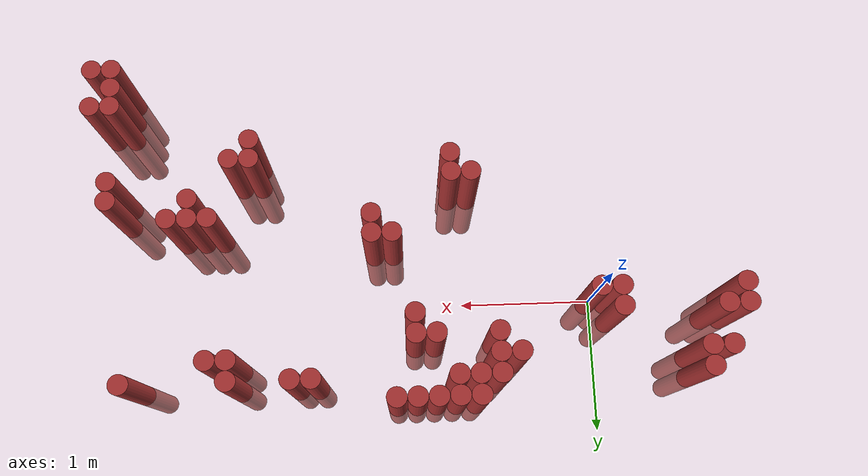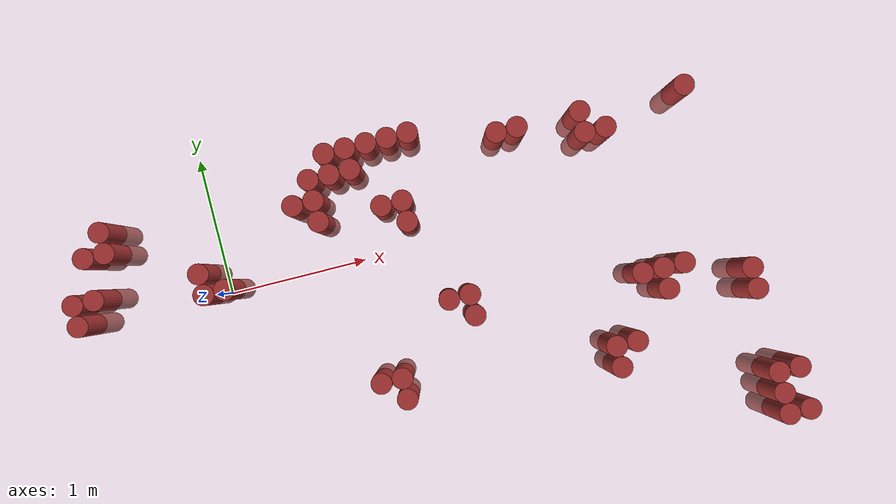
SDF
<sdf version="1.6">
 <world name="default">
  <model name="ground_plane">
   <static>1</static>
   <link name="link">
    <collision name="collision">
     <geometry><plane><normal>0 0 1</normal><size>100 100</size></plane></geometry>
     <surface><friction><ode><mu>100</mu><mu2>50</mu2></ode></friction></surface>
    </collision>
    <visual name="visual">
     <cast_shadows>0</cast_shadows>
     <geometry><plane><normal>0 0 1</normal><size>100 100</size></plane></geometry>
     <material>
      <script><uri>file://media/materials/scripts/gazebo.material</uri><name>Gazebo/Grey</name></script>
     </material>
    </visual>
   </link>
  </model>
  <model name="unit_cylinder_330">
   <static>1</static>
   <pose>-1.025000 0.025000 0.000000 0.000000 0.000000 0.000000</pose>
   <link name="link">
    <inertial>
     <mass>1</mass>
     <inertia><ixx>0.145833</ixx><ixy>0</ixy><ixz>0</ixz><iyy>0.145833</iyy><iyz>0</iyz><izz>0.125</izz></inertia>
    </inertial>
    <collision name="collision">
     <geometry><cylinder><radius>0.075000</radius><length>1.5</length></cylinder></geometry>
    </collision>
    <visual name="visual">
     <geometry><cylinder><radius>0.075000</radius><length>1.5</length></cylinder></geometry>
     <material>
      <ambient>0.648000 0.192000 0.192000 1</ambient>
      <diffuse>0.648000 0.192000 0.192000 1</diffuse>
     </material>
     <material>
      <script><name>Gazebo/Grey</name><uri>file://media/materials/scripts/gazebo.material</uri></script>
     </material>
    </visual>
   </link>
  </model>
  <model name="unit_cylinder_331">
   <static>1</static>
   <pose>-1.025000 0.175000 0.000000 0.000000 0.000000 0.000000</pose>
   <link name="link">
    <inertial>
     <mass>1</mass>
     <inertia><ixx>0.145833</ixx><ixy>0</ixy><ixz>0</ixz><iyy>0.145833</iyy><iyz>0</iyz><izz>0.125</izz></inertia>
    </inertial>
    <collision name="collision">
     <geometry><cylinder><radius>0.075000</radius><length>1.5</length></cylinder></geometry>
    </collision>
    <visual name="visual">
     <geometry><cylinder><radius>0.075000</radius><length>1.5</length></cylinder></geometry>
     <material>
      <ambient>0.648000 0.192000 0.192000 1</ambient>
      <diffuse>0.648000 0.192000 0.192000 1</diffuse>
     </material>
     <material>
      <script><name>Gazebo/Grey</name><uri>file://media/materials/scripts/gazebo.material</uri></script>
     </material>
    </visual>
   </link>
  </model>
  <model name="unit_cylinder_332">
   <static>1</static>
   <pose>-0.875000 0.175000 0.000000 0.000000 0.000000 0.000000</pose>
   <link name="link">
    <inertial>
     <mass>1</mass>
     <inertia><ixx>0.145833</ixx><ixy>0</ixy><ixz>0</ixz><iyy>0.145833</iyy><iyz>0</iyz><izz>0.125</izz></inertia>
    </inertial>
    <collision name="collision">
     <geometry><cylinder><radius>0.075000</radius><length>1.5</length></cylinder></geometry>
    </collision>
    <visual name="visual">
     <geometry><cylinder><radius>0.075000</radius><length>1.5</length></cylinder></geometry>
     <material>
      <ambient>0.648000 0.192000 0.192000 1</ambient>
      <diffuse>0.648000 0.192000 0.192000 1</diffuse>
     </material>
     <material>
      <script><name>Gazebo/Grey</name><uri>file://media/materials/scripts/gazebo.material</uri></script>
     </material>
    </visual>
   </link>
  </model>
  <model name="unit_cylinder_333">
   <static>1</static>
   <pose>-0.875000 0.475000 0.000000 0.000000 0.000000 0.000000</pose>
   <link name="link">
    <inertial>
     <mass>1</mass>
     <inertia><ixx>0.145833</ixx><ixy>0</ixy><ixz>0</ixz><iyy>0.145833</iyy><iyz>0</iyz><izz>0.125</izz></inertia>
    </inertial>
    <collision name="collision">
     <geometry><cylinder><radius>0.075000</radius><length>1.5</length></cylinder></geometry>
    </collision>
    <visual name="visual">
     <geometry><cylinder><radius>0.075000</radius><length>1.5</length></cylinder></geometry>
     <material>
      <ambient>0.648000 0.192000 0.192000 1</ambient>
      <diffuse>0.648000 0.192000 0.192000 1</diffuse>
     </material>
     <material>
      <script><name>Gazebo/Grey</name><uri>file://media/materials/scripts/gazebo.material</uri></script>
     </material>
    </visual>
   </link>
  </model>
  <model name="unit_cylinder_334">
   <static>1</static>
   <pose>-0.725000 0.475000 0.000000 0.000000 0.000000 0.000000</pose>
   <link name="link">
    <inertial>
     <mass>1</mass>
     <inertia><ixx>0.145833</ixx><ixy>0</ixy><ixz>0</ixz><iyy>0.145833</iyy><iyz>0</iyz><izz>0.125</izz></inertia>
    </inertial>
    <collision name="collision">
     <geometry><cylinder><radius>0.075000</radius><length>1.5</length></cylinder></geometry>
    </collision>
    <visual name="visual">
     <geometry><cylinder><radius>0.075000</radius><length>1.5</length></cylinder></geometry>
     <material>
      <ambient>0.648000 0.192000 0.192000 1</ambient>
      <diffuse>0.648000 0.192000 0.192000 1</diffuse>
     </material>
     <material>
      <script><name>Gazebo/Grey</name><uri>file://media/materials/scripts/gazebo.material</uri></script>
     </material>
    </visual>
   </link>
  </model>
  <model name="unit_cylinder_335">
   <static>1</static>
   <pose>-0.725000 0.625000 0.000000 0.000000 0.000000 0.000000</pose>
   <link name="link">
    <inertial>
     <mass>1</mass>
     <inertia><ixx>0.145833</ixx><ixy>0</ixy><ixz>0</ixz><iyy>0.145833</iyy><iyz>0</iyz><izz>0.125</izz></inertia>
    </inertial>
    <collision name="collision">
     <geometry><cylinder><radius>0.075000</radius><length>1.5</length></cylinder></geometry>
    </collision>
    <visual name="visual">
     <geometry><cylinder><radius>0.075000</radius><length>1.5</length></cylinder></geometry>
     <material>
      <ambient>0.648000 0.192000 0.192000 1</ambient>
      <diffuse>0.648000 0.192000 0.192000 1</diffuse>
     </material>
     <material>
      <script><name>Gazebo/Grey</name><uri>file://media/materials/scripts/gazebo.material</uri></script>
     </material>
    </visual>
   </link>
  </model>
  <model name="unit_cylinder_339">
   <static>1</static>
   <pose>-0.125000 0.025000 0.000000 0.000000 0.000000 0.000000</pose>
   <link name="link">
    <inertial>
     <mass>1</mass>
     <inertia><ixx>0.145833</ixx><ixy>0</ixy><ixz>0</ixz><iyy>0.145833</iyy><iyz>0</iyz><izz>0.125</izz></inertia>
    </inertial>
    <collision name="collision">
     <geometry><cylinder><radius>0.075000</radius><length>1.5</length></cylinder></geometry>
    </collision>
    <visual name="visual">
     <geometry><cylinder><radius>0.075000</radius><length>1.5</length></cylinder></geometry>
     <material>
      <ambient>0.648000 0.192000 0.192000 1</ambient>
      <diffuse>0.648000 0.192000 0.192000 1</diffuse>
     </material>
     <material>
      <script><name>Gazebo/Grey</name><uri>file://media/materials/scripts/gazebo.material</uri></script>
     </material>
    </visual>
   </link>
  </model>
  <model name="unit_cylinder_340">
   <static>1</static>
   <pose>-0.125000 0.175000 0.000000 0.000000 0.000000 0.000000</pose>
   <link name="link">
    <inertial>
     <mass>1</mass>
     <inertia><ixx>0.145833</ixx><ixy>0</ixy><ixz>0</ixz><iyy>0.145833</iyy><iyz>0</iyz><izz>0.125</izz></inertia>
    </inertial>
    <collision name="collision">
     <geometry><cylinder><radius>0.075000</radius><length>1.5</length></cylinder></geometry>
    </collision>
    <visual name="visual">
     <geometry><cylinder><radius>0.075000</radius><length>1.5</length></cylinder></geometry>
     <material>
      <ambient>0.648000 0.192000 0.192000 1</ambient>
      <diffuse>0.648000 0.192000 0.192000 1</diffuse>
     </material>
     <material>
      <script><name>Gazebo/Grey</name><uri>file://media/materials/scripts/gazebo.material</uri></script>
     </material>
    </visual>
   </link>
  </model>
  <model name="unit_cylinder_341">
   <static>1</static>
   <pose>0.025000 0.025000 0.000000 0.000000 0.000000 0.000000</pose>
   <link name="link">
    <inertial>
     <mass>1</mass>
     <inertia><ixx>0.145833</ixx><ixy>0</ixy><ixz>0</ixz><iyy>0.145833</iyy><iyz>0</iyz><izz>0.125</izz></inertia>
    </inertial>
    <collision name="collision">
     <geometry><cylinder><radius>0.075000</radius><length>1.5</length></cylinder></geometry>
    </collision>
    <visual name="visual">
     <geometry><cylinder><radius>0.075000</radius><length>1.5</length></cylinder></geometry>
     <material>
      <ambient>0.648000 0.192000 0.192000 1</ambient>
      <diffuse>0.648000 0.192000 0.192000 1</diffuse>
     </material>
     <material>
      <script><name>Gazebo/Grey</name><uri>file://media/materials/scripts/gazebo.material</uri></script>
     </material>
    </visual>
   </link>
  </model>
  <model name="unit_cylinder_355">
   <static>1</static>
   <pose>0.625000 0.475000 0.000000 0.000000 0.000000 0.000000</pose>
   <link name="link">
    <inertial>
     <mass>1</mass>
     <inertia><ixx>0.145833</ixx><ixy>0</ixy><ixz>0</ixz><iyy>0.145833</iyy><iyz>0</iyz><izz>0.125</izz></inertia>
    </inertial>
    <collision name="collision">
     <geometry><cylinder><radius>0.075000</radius><length>1.5</length></cylinder></geometry>
    </collision>
    <visual name="visual">
     <geometry><cylinder><radius>0.075000</radius><length>1.5</length></cylinder></geometry>
     <material>
      <ambient>0.648000 0.192000 0.192000 1</ambient>
      <diffuse>0.648000 0.192000 0.192000 1</diffuse>
     </material>
     <material>
      <script><name>Gazebo/Grey</name><uri>file://media/materials/scripts/gazebo.material</uri></script>
     </material>
    </visual>
   </link>
  </model>
  <model name="unit_cylinder_356">
   <static>1</static>
   <pose>0.775000 0.325000 0.000000 0.000000 0.000000 0.000000</pose>
   <link name="link">
    <inertial>
     <mass>1</mass>
     <inertia><ixx>0.145833</ixx><ixy>0</ixy><ixz>0</ixz><iyy>0.145833</iyy><iyz>0</iyz><izz>0.125</izz></inertia>
    </inertial>
    <collision name="collision">
     <geometry><cylinder><radius>0.075000</radius><length>1.5</length></cylinder></geometry>
    </collision>
    <visual name="visual">
     <geometry><cylinder><radius>0.075000</radius><length>1.5</length></cylinder></geometry>
     <material>
      <ambient>0.648000 0.192000 0.192000 1</ambient>
      <diffuse>0.648000 0.192000 0.192000 1</diffuse>
     </material>
     <material>
      <script><name>Gazebo/Grey</name><uri>file://media/materials/scripts/gazebo.material</uri></script>
     </material>
    </visual>
   </link>
  </model>
  <model name="unit_cylinder_357">
   <static>1</static>
   <pose>0.775000 0.475000 0.000000 0.000000 0.000000 0.000000</pose>
   <link name="link">
    <inertial>
     <mass>1</mass>
     <inertia><ixx>0.145833</ixx><ixy>0</ixy><ixz>0</ixz><iyy>0.145833</iyy><iyz>0</iyz><izz>0.125</izz></inertia>
    </inertial>
    <collision name="collision">
     <geometry><cylinder><radius>0.075000</radius><length>1.5</length></cylinder></geometry>
    </collision>
    <visual name="visual">
     <geometry><cylinder><radius>0.075000</radius><length>1.5</length></cylinder></geometry>
     <material>
      <ambient>0.648000 0.192000 0.192000 1</ambient>
      <diffuse>0.648000 0.192000 0.192000 1</diffuse>
     </material>
     <material>
      <script><name>Gazebo/Grey</name><uri>file://media/materials/scripts/gazebo.material</uri></script>
     </material>
    </visual>
   </link>
  </model>
  <model name="unit_cylinder_358">
   <static>1</static>
   <pose>0.775000 0.625000 0.000000 0.000000 0.000000 0.000000</pose>
   <link name="link">
    <inertial>
     <mass>1</mass>
     <inertia><ixx>0.145833</ixx><ixy>0</ixy><ixz>0</ixz><iyy>0.145833</iyy><iyz>0</iyz><izz>0.125</izz></inertia>
    </inertial>
    <collision name="collision">
     <geometry><cylinder><radius>0.075000</radius><length>1.5</length></cylinder></geometry>
    </collision>
    <visual name="visual">
     <geometry><cylinder><radius>0.075000</radius><length>1.5</length></cylinder></geometry>
     <material>
      <ambient>0.648000 0.192000 0.192000 1</ambient>
      <diffuse>0.648000 0.192000 0.192000 1</diffuse>
     </material>
     <material>
      <script><name>Gazebo/Grey</name><uri>file://media/materials/scripts/gazebo.material</uri></script>
     </material>
    </visual>
   </link>
  </model>
  <model name="unit_cylinder_360">
   <static>1</static>
   <pose>0.925000 -0.875000 0.000000 0.000000 0.000000 0.000000</pose>
   <link name="link">
    <inertial>
     <mass>1</mass>
     <inertia><ixx>0.145833</ixx><ixy>0</ixy><ixz>0</ixz><iyy>0.145833</iyy><iyz>0</iyz><izz>0.125</izz></inertia>
    </inertial>
    <collision name="collision">
     <geometry><cylinder><radius>0.075000</radius><length>1.5</length></cylinder></geometry>
    </collision>
    <visual name="visual">
     <geometry><cylinder><radius>0.075000</radius><length>1.5</length></cylinder></geometry>
     <material>
      <ambient>0.648000 0.192000 0.192000 1</ambient>
      <diffuse>0.648000 0.192000 0.192000 1</diffuse>
     </material>
     <material>
      <script><name>Gazebo/Grey</name><uri>file://media/materials/scripts/gazebo.material</uri></script>
     </material>
    </visual>
   </link>
  </model>
  <model name="unit_cylinder_361">
   <static>1</static>
   <pose>0.925000 0.625000 0.000000 0.000000 0.000000 0.000000</pose>
   <link name="link">
    <inertial>
     <mass>1</mass>
     <inertia><ixx>0.145833</ixx><ixy>0</ixy><ixz>0</ixz><iyy>0.145833</iyy><iyz>0</iyz><izz>0.125</izz></inertia>
    </inertial>
    <collision name="collision">
     <geometry><cylinder><radius>0.075000</radius><length>1.5</length></cylinder></geometry>
    </collision>
    <visual name="visual">
     <geometry><cylinder><radius>0.075000</radius><length>1.5</length></cylinder></geometry>
     <material>
      <ambient>0.648000 0.192000 0.192000 1</ambient>
      <diffuse>0.648000 0.192000 0.192000 1</diffuse>
     </material>
     <material>
      <script><name>Gazebo/Grey</name><uri>file://media/materials/scripts/gazebo.material</uri></script>
     </material>
    </visual>
   </link>
  </model>
  <model name="unit_cylinder_362">
   <static>1</static>
   <pose>0.925000 0.775000 0.000000 0.000000 0.000000 0.000000</pose>
   <link name="link">
    <inertial>
     <mass>1</mass>
     <inertia><ixx>0.145833</ixx><ixy>0</ixy><ixz>0</ixz><iyy>0.145833</iyy><iyz>0</iyz><izz>0.125</izz></inertia>
    </inertial>
    <collision name="collision">
     <geometry><cylinder><radius>0.075000</radius><length>1.5</length></cylinder></geometry>
    </collision>
    <visual name="visual">
     <geometry><cylinder><radius>0.075000</radius><length>1.5</length></cylinder></geometry>
     <material>
      <ambient>0.648000 0.192000 0.192000 1</ambient>
      <diffuse>0.648000 0.192000 0.192000 1</diffuse>
     </material>
     <material>
      <script><name>Gazebo/Grey</name><uri>file://media/materials/scripts/gazebo.material</uri></script>
     </material>
    </visual>
   </link>
  </model>
  <model name="unit_cylinder_368">
   <static>1</static>
   <pose>1.075000 -1.025000 0.000000 0.000000 0.000000 0.000000</pose>
   <link name="link">
    <inertial>
     <mass>1</mass>
     <inertia><ixx>0.145833</ixx><ixy>0</ixy><ixz>0</ixz><iyy>0.145833</iyy><iyz>0</iyz><izz>0.125</izz></inertia>
    </inertial>
    <collision name="collision">
     <geometry><cylinder><radius>0.075000</radius><length>1.5</length></cylinder></geometry>
    </collision>
    <visual name="visual">
     <geometry><cylinder><radius>0.075000</radius><length>1.5</length></cylinder></geometry>
     <material>
      <ambient>0.648000 0.192000 0.192000 1</ambient>
      <diffuse>0.648000 0.192000 0.192000 1</diffuse>
     </material>
     <material>
      <script><name>Gazebo/Grey</name><uri>file://media/materials/scripts/gazebo.material</uri></script>
     </material>
    </visual>
   </link>
  </model>
  <model name="unit_cylinder_369">
   <static>1</static>
   <pose>1.075000 -0.875000 0.000000 0.000000 0.000000 0.000000</pose>
   <link name="link">
    <inertial>
     <mass>1</mass>
     <inertia><ixx>0.145833</ixx><ixy>0</ixy><ixz>0</ixz><iyy>0.145833</iyy><iyz>0</iyz><izz>0.125</izz></inertia>
    </inertial>
    <collision name="collision">
     <geometry><cylinder><radius>0.075000</radius><length>1.5</length></cylinder></geometry>
    </collision>
    <visual name="visual">
     <geometry><cylinder><radius>0.075000</radius><length>1.5</length></cylinder></geometry>
     <material>
      <ambient>0.648000 0.192000 0.192000 1</ambient>
      <diffuse>0.648000 0.192000 0.192000 1</diffuse>
     </material>
     <material>
      <script><name>Gazebo/Grey</name><uri>file://media/materials/scripts/gazebo.material</uri></script>
     </material>
    </visual>
   </link>
  </model>
  <model name="unit_cylinder_370">
   <static>1</static>
   <pose>1.075000 0.625000 0.000000 0.000000 0.000000 0.000000</pose>
   <link name="link">
    <inertial>
     <mass>1</mass>
     <inertia><ixx>0.145833</ixx><ixy>0</ixy><ixz>0</ixz><iyy>0.145833</iyy><iyz>0</iyz><izz>0.125</izz></inertia>
    </inertial>
    <collision name="collision">
     <geometry><cylinder><radius>0.075000</radius><length>1.5</length></cylinder></geometry>
    </collision>
    <visual name="visual">
     <geometry><cylinder><radius>0.075000</radius><length>1.5</length></cylinder></geometry>
     <material>
      <ambient>0.648000 0.192000 0.192000 1</ambient>
      <diffuse>0.648000 0.192000 0.192000 1</diffuse>
     </material>
     <material>
      <script><name>Gazebo/Grey</name><uri>file://media/materials/scripts/gazebo.material</uri></script>
     </material>
    </visual>
   </link>
  </model>
  <model name="unit_cylinder_371">
   <static>1</static>
   <pose>1.075000 0.775000 0.000000 0.000000 0.000000 0.000000</pose>
   <link name="link">
    <inertial>
     <mass>1</mass>
     <inertia><ixx>0.145833</ixx><ixy>0</ixy><ixz>0</ixz><iyy>0.145833</iyy><iyz>0</iyz><izz>0.125</izz></inertia>
    </inertial>
    <collision name="collision">
     <geometry><cylinder><radius>0.075000</radius><length>1.5</length></cylinder></geometry>
    </collision>
    <visual name="visual">
     <geometry><cylinder><radius>0.075000</radius><length>1.5</length></cylinder></geometry>
     <material>
      <ambient>0.648000 0.192000 0.192000 1</ambient>
      <diffuse>0.648000 0.192000 0.192000 1</diffuse>
     </material>
     <material>
      <script><name>Gazebo/Grey</name><uri>file://media/materials/scripts/gazebo.material</uri></script>
     </material>
    </visual>
   </link>
  </model>
  <model name="unit_cylinder_383">
   <static>1</static>
   <pose>1.225000 0.325000 0.000000 0.000000 0.000000 0.000000</pose>
   <link name="link">
    <inertial>
     <mass>1</mass>
     <inertia><ixx>0.145833</ixx><ixy>0</ixy><ixz>0</ixz><iyy>0.145833</iyy><iyz>0</iyz><izz>0.125</izz></inertia>
    </inertial>
    <collision name="collision">
     <geometry><cylinder><radius>0.075000</radius><length>1.5</length></cylinder></geometry>
    </collision>
    <visual name="visual">
     <geometry><cylinder><radius>0.075000</radius><length>1.5</length></cylinder></geometry>
     <material>
      <ambient>0.648000 0.192000 0.192000 1</ambient>
      <diffuse>0.648000 0.192000 0.192000 1</diffuse>
     </material>
     <material>
      <script><name>Gazebo/Grey</name><uri>file://media/materials/scripts/gazebo.material</uri></script>
     </material>
    </visual>
   </link>
  </model>
  <model name="unit_cylinder_384">
   <static>1</static>
   <pose>1.225000 0.775000 0.000000 0.000000 0.000000 0.000000</pose>
   <link name="link">
    <inertial>
     <mass>1</mass>
     <inertia><ixx>0.145833</ixx><ixy>0</ixy><ixz>0</ixz><iyy>0.145833</iyy><iyz>0</iyz><izz>0.125</izz></inertia>
    </inertial>
    <collision name="collision">
     <geometry><cylinder><radius>0.075000</radius><length>1.5</length></cylinder></geometry>
    </collision>
    <visual name="visual">
     <geometry><cylinder><radius>0.075000</radius><length>1.5</length></cylinder></geometry>
     <material>
      <ambient>0.648000 0.192000 0.192000 1</ambient>
      <diffuse>0.648000 0.192000 0.192000 1</diffuse>
     </material>
     <material>
      <script><name>Gazebo/Grey</name><uri>file://media/materials/scripts/gazebo.material</uri></script>
     </material>
    </visual>
   </link>
  </model>
  <model name="unit_cylinder_391">
   <static>1</static>
   <pose>1.375000 0.175000 0.000000 0.000000 0.000000 0.000000</pose>
   <link name="link">
    <inertial>
     <mass>1</mass>
     <inertia><ixx>0.145833</ixx><ixy>0</ixy><ixz>0</ixz><iyy>0.145833</iyy><iyz>0</iyz><izz>0.125</izz></inertia>
    </inertial>
    <collision name="collision">
     <geometry><cylinder><radius>0.075000</radius><length>1.5</length></cylinder></geometry>
    </collision>
    <visual name="visual">
     <geometry><cylinder><radius>0.075000</radius><length>1.5</length></cylinder></geometry>
     <material>
      <ambient>0.648000 0.192000 0.192000 1</ambient>
      <diffuse>0.648000 0.192000 0.192000 1</diffuse>
     </material>
     <material>
      <script><name>Gazebo/Grey</name><uri>file://media/materials/scripts/gazebo.material</uri></script>
     </material>
    </visual>
   </link>
  </model>
  <model name="unit_cylinder_392">
   <static>1</static>
   <pose>1.375000 0.325000 0.000000 0.000000 0.000000 0.000000</pose>
   <link name="link">
    <inertial>
     <mass>1</mass>
     <inertia><ixx>0.145833</ixx><ixy>0</ixy><ixz>0</ixz><iyy>0.145833</iyy><iyz>0</iyz><izz>0.125</izz></inertia>
    </inertial>
    <collision name="collision">
     <geometry><cylinder><radius>0.075000</radius><length>1.5</length></cylinder></geometry>
    </collision>
    <visual name="visual">
     <geometry><cylinder><radius>0.075000</radius><length>1.5</length></cylinder></geometry>
     <material>
      <ambient>0.648000 0.192000 0.192000 1</ambient>
      <diffuse>0.648000 0.192000 0.192000 1</diffuse>
     </material>
     <material>
      <script><name>Gazebo/Grey</name><uri>file://media/materials/scripts/gazebo.material</uri></script>
     </material>
    </visual>
   </link>
  </model>
  <model name="unit_cylinder_393">
   <static>1</static>
   <pose>1.375000 0.775000 0.000000 0.000000 0.000000 0.000000</pose>
   <link name="link">
    <inertial>
     <mass>1</mass>
     <inertia><ixx>0.145833</ixx><ixy>0</ixy><ixz>0</ixz><iyy>0.145833</iyy><iyz>0</iyz><izz>0.125</izz></inertia>
    </inertial>
    <collision name="collision">
     <geometry><cylinder><radius>0.075000</radius><length>1.5</length></cylinder></geometry>
    </collision>
    <visual name="visual">
     <geometry><cylinder><radius>0.075000</radius><length>1.5</length></cylinder></geometry>
     <material>
      <ambient>0.648000 0.192000 0.192000 1</ambient>
      <diffuse>0.648000 0.192000 0.192000 1</diffuse>
     </material>
     <material>
      <script><name>Gazebo/Grey</name><uri>file://media/materials/scripts/gazebo.material</uri></script>
     </material>
    </visual>
   </link>
  </model>
  <model name="unit_cylinder_398">
   <static>1</static>
   <pose>1.525000 -0.425000 0.000000 0.000000 0.000000 0.000000</pose>
   <link name="link">
    <inertial>
     <mass>1</mass>
     <inertia><ixx>0.145833</ixx><ixy>0</ixy><ixz>0</ixz><iyy>0.145833</iyy><iyz>0</iyz><izz>0.125</izz></inertia>
    </inertial>
    <collision name="collision">
     <geometry><cylinder><radius>0.075000</radius><length>1.5</length></cylinder></geometry>
    </collision>
    <visual name="visual">
     <geometry><cylinder><radius>0.075000</radius><length>1.5</length></cylinder></geometry>
     <material>
      <ambient>0.648000 0.192000 0.192000 1</ambient>
      <diffuse>0.648000 0.192000 0.192000 1</diffuse>
     </material>
     <material>
      <script><name>Gazebo/Grey</name><uri>file://media/materials/scripts/gazebo.material</uri></script>
     </material>
    </visual>
   </link>
  </model>
  <model name="unit_cylinder_399">
   <static>1</static>
   <pose>1.525000 0.775000 0.000000 0.000000 0.000000 0.000000</pose>
   <link name="link">
    <inertial>
     <mass>1</mass>
     <inertia><ixx>0.145833</ixx><ixy>0</ixy><ixz>0</ixz><iyy>0.145833</iyy><iyz>0</iyz><izz>0.125</izz></inertia>
    </inertial>
    <collision name="collision">
     <geometry><cylinder><radius>0.075000</radius><length>1.5</length></cylinder></geometry>
    </collision>
    <visual name="visual">
     <geometry><cylinder><radius>0.075000</radius><length>1.5</length></cylinder></geometry>
     <material>
      <ambient>0.648000 0.192000 0.192000 1</ambient>
      <diffuse>0.648000 0.192000 0.192000 1</diffuse>
     </material>
     <material>
      <script><name>Gazebo/Grey</name><uri>file://media/materials/scripts/gazebo.material</uri></script>
     </material>
    </visual>
   </link>
  </model>
  <model name="unit_cylinder_404">
   <static>1</static>
   <pose>1.675000 -0.575000 0.000000 0.000000 0.000000 0.000000</pose>
   <link name="link">
    <inertial>
     <mass>1</mass>
     <inertia><ixx>0.145833</ixx><ixy>0</ixy><ixz>0</ixz><iyy>0.145833</iyy><iyz>0</iyz><izz>0.125</izz></inertia>
    </inertial>
    <collision name="collision">
     <geometry><cylinder><radius>0.075000</radius><length>1.5</length></cylinder></geometry>
    </collision>
    <visual name="visual">
     <geometry><cylinder><radius>0.075000</radius><length>1.5</length></cylinder></geometry>
     <material>
      <ambient>0.648000 0.192000 0.192000 1</ambient>
      <diffuse>0.648000 0.192000 0.192000 1</diffuse>
     </material>
     <material>
      <script><name>Gazebo/Grey</name><uri>file://media/materials/scripts/gazebo.material</uri></script>
     </material>
    </visual>
   </link>
  </model>
  <model name="unit_cylinder_405">
   <static>1</static>
   <pose>1.675000 -0.425000 0.000000 0.000000 0.000000 0.000000</pose>
   <link name="link">
    <inertial>
     <mass>1</mass>
     <inertia><ixx>0.145833</ixx><ixy>0</ixy><ixz>0</ixz><iyy>0.145833</iyy><iyz>0</iyz><izz>0.125</izz></inertia>
    </inertial>
    <collision name="collision">
     <geometry><cylinder><radius>0.075000</radius><length>1.5</length></cylinder></geometry>
    </collision>
    <visual name="visual">
     <geometry><cylinder><radius>0.075000</radius><length>1.5</length></cylinder></geometry>
     <material>
      <ambient>0.648000 0.192000 0.192000 1</ambient>
      <diffuse>0.648000 0.192000 0.192000 1</diffuse>
     </material>
     <material>
      <script><name>Gazebo/Grey</name><uri>file://media/materials/scripts/gazebo.material</uri></script>
     </material>
    </visual>
   </link>
  </model>
  <model name="unit_cylinder_416">
   <static>1</static>
   <pose>2.125000 0.625000 0.000000 0.000000 0.000000 0.000000</pose>
   <link name="link">
    <inertial>
     <mass>1</mass>
     <inertia><ixx>0.145833</ixx><ixy>0</ixy><ixz>0</ixz><iyy>0.145833</iyy><iyz>0</iyz><izz>0.125</izz></inertia>
    </inertial>
    <collision name="collision">
     <geometry><cylinder><radius>0.075000</radius><length>1.5</length></cylinder></geometry>
    </collision>
    <visual name="visual">
     <geometry><cylinder><radius>0.075000</radius><length>1.5</length></cylinder></geometry>
     <material>
      <ambient>0.648000 0.192000 0.192000 1</ambient>
      <diffuse>0.648000 0.192000 0.192000 1</diffuse>
     </material>
     <material>
      <script><name>Gazebo/Grey</name><uri>file://media/materials/scripts/gazebo.material</uri></script>
     </material>
    </visual>
   </link>
  </model>
  <model name="unit_cylinder_421">
   <static>1</static>
   <pose>2.275000 0.625000 0.000000 0.000000 0.000000 0.000000</pose>
   <link name="link">
    <inertial>
     <mass>1</mass>
     <inertia><ixx>0.145833</ixx><ixy>0</ixy><ixz>0</ixz><iyy>0.145833</iyy><iyz>0</iyz><izz>0.125</izz></inertia>
    </inertial>
    <collision name="collision">
     <geometry><cylinder><radius>0.075000</radius><length>1.5</length></cylinder></geometry>
    </collision>
    <visual name="visual">
     <geometry><cylinder><radius>0.075000</radius><length>1.5</length></cylinder></geometry>
     <material>
      <ambient>0.648000 0.192000 0.192000 1</ambient>
      <diffuse>0.648000 0.192000 0.192000 1</diffuse>
     </material>
     <material>
      <script><name>Gazebo/Grey</name><uri>file://media/materials/scripts/gazebo.material</uri></script>
     </material>
    </visual>
   </link>
  </model>
  <model name="unit_cylinder_429">
   <static>1</static>
   <pose>2.575000 -1.175000 0.000000 0.000000 0.000000 0.000000</pose>
   <link name="link">
    <inertial>
     <mass>1</mass>
     <inertia><ixx>0.145833</ixx><ixy>0</ixy><ixz>0</ixz><iyy>0.145833</iyy><iyz>0</iyz><izz>0.125</izz></inertia>
    </inertial>
    <collision name="collision">
     <geometry><cylinder><radius>0.075000</radius><length>1.5</length></cylinder></geometry>
    </collision>
    <visual name="visual">
     <geometry><cylinder><radius>0.075000</radius><length>1.5</length></cylinder></geometry>
     <material>
      <ambient>0.648000 0.192000 0.192000 1</ambient>
      <diffuse>0.648000 0.192000 0.192000 1</diffuse>
     </material>
     <material>
      <script><name>Gazebo/Grey</name><uri>file://media/materials/scripts/gazebo.material</uri></script>
     </material>
    </visual>
   </link>
  </model>
  <model name="unit_cylinder_430">
   <static>1</static>
   <pose>2.575000 -1.025000 0.000000 0.000000 0.000000 0.000000</pose>
   <link name="link">
    <inertial>
     <mass>1</mass>
     <inertia><ixx>0.145833</ixx><ixy>0</ixy><ixz>0</ixz><iyy>0.145833</iyy><iyz>0</iyz><izz>0.125</izz></inertia>
    </inertial>
    <collision name="collision">
     <geometry><cylinder><radius>0.075000</radius><length>1.5</length></cylinder></geometry>
    </collision>
    <visual name="visual">
     <geometry><cylinder><radius>0.075000</radius><length>1.5</length></cylinder></geometry>
     <material>
      <ambient>0.648000 0.192000 0.192000 1</ambient>
      <diffuse>0.648000 0.192000 0.192000 1</diffuse>
     </material>
     <material>
      <script><name>Gazebo/Grey</name><uri>file://media/materials/scripts/gazebo.material</uri></script>
     </material>
    </visual>
   </link>
  </model>
  <model name="unit_cylinder_434">
   <static>1</static>
   <pose>2.725000 -1.025000 0.000000 0.000000 0.000000 0.000000</pose>
   <link name="link">
    <inertial>
     <mass>1</mass>
     <inertia><ixx>0.145833</ixx><ixy>0</ixy><ixz>0</ixz><iyy>0.145833</iyy><iyz>0</iyz><izz>0.125</izz></inertia>
    </inertial>
    <collision name="collision">
     <geometry><cylinder><radius>0.075000</radius><length>1.5</length></cylinder></geometry>
    </collision>
    <visual name="visual">
     <geometry><cylinder><radius>0.075000</radius><length>1.5</length></cylinder></geometry>
     <material>
      <ambient>0.648000 0.192000 0.192000 1</ambient>
      <diffuse>0.648000 0.192000 0.192000 1</diffuse>
     </material>
     <material>
      <script><name>Gazebo/Grey</name><uri>file://media/materials/scripts/gazebo.material</uri></script>
     </material>
    </visual>
   </link>
  </model>
  <model name="unit_cylinder_435">
   <static>1</static>
   <pose>2.725000 0.475000 0.000000 0.000000 0.000000 0.000000</pose>
   <link name="link">
    <inertial>
     <mass>1</mass>
     <inertia><ixx>0.145833</ixx><ixy>0</ixy><ixz>0</ixz><iyy>0.145833</iyy><iyz>0</iyz><izz>0.125</izz></inertia>
    </inertial>
    <collision name="collision">
     <geometry><cylinder><radius>0.075000</radius><length>1.5</length></cylinder></geometry>
    </collision>
    <visual name="visual">
     <geometry><cylinder><radius>0.075000</radius><length>1.5</length></cylinder></geometry>
     <material>
      <ambient>0.648000 0.192000 0.192000 1</ambient>
      <diffuse>0.648000 0.192000 0.192000 1</diffuse>
     </material>
     <material>
      <script><name>Gazebo/Grey</name><uri>file://media/materials/scripts/gazebo.material</uri></script>
     </material>
    </visual>
   </link>
  </model>
  <model name="unit_cylinder_436">
   <static>1</static>
   <pose>2.725000 0.625000 0.000000 0.000000 0.000000 0.000000</pose>
   <link name="link">
    <inertial>
     <mass>1</mass>
     <inertia><ixx>0.145833</ixx><ixy>0</ixy><ixz>0</ixz><iyy>0.145833</iyy><iyz>0</iyz><izz>0.125</izz></inertia>
    </inertial>
    <collision name="collision">
     <geometry><cylinder><radius>0.075000</radius><length>1.5</length></cylinder></geometry>
    </collision>
    <visual name="visual">
     <geometry><cylinder><radius>0.075000</radius><length>1.5</length></cylinder></geometry>
     <material>
      <ambient>0.648000 0.192000 0.192000 1</ambient>
      <diffuse>0.648000 0.192000 0.192000 1</diffuse>
     </material>
     <material>
      <script><name>Gazebo/Grey</name><uri>file://media/materials/scripts/gazebo.material</uri></script>
     </material>
    </visual>
   </link>
  </model>
  <model name="unit_cylinder_440">
   <static>1</static>
   <pose>2.875000 -0.575000 0.000000 0.000000 0.000000 0.000000</pose>
   <link name="link">
    <inertial>
     <mass>1</mass>
     <inertia><ixx>0.145833</ixx><ixy>0</ixy><ixz>0</ixz><iyy>0.145833</iyy><iyz>0</iyz><izz>0.125</izz></inertia>
    </inertial>
    <collision name="collision">
     <geometry><cylinder><radius>0.075000</radius><length>1.5</length></cylinder></geometry>
    </collision>
    <visual name="visual">
     <geometry><cylinder><radius>0.075000</radius><length>1.5</length></cylinder></geometry>
     <material>
      <ambient>0.648000 0.192000 0.192000 1</ambient>
      <diffuse>0.648000 0.192000 0.192000 1</diffuse>
     </material>
     <material>
      <script><name>Gazebo/Grey</name><uri>file://media/materials/scripts/gazebo.material</uri></script>
     </material>
    </visual>
   </link>
  </model>
  <model name="unit_cylinder_441">
   <static>1</static>
   <pose>2.875000 0.475000 0.000000 0.000000 0.000000 0.000000</pose>
   <link name="link">
    <inertial>
     <mass>1</mass>
     <inertia><ixx>0.145833</ixx><ixy>0</ixy><ixz>0</ixz><iyy>0.145833</iyy><iyz>0</iyz><izz>0.125</izz></inertia>
    </inertial>
    <collision name="collision">
     <geometry><cylinder><radius>0.075000</radius><length>1.5</length></cylinder></geometry>
    </collision>
    <visual name="visual">
     <geometry><cylinder><radius>0.075000</radius><length>1.5</length></cylinder></geometry>
     <material>
      <ambient>0.648000 0.192000 0.192000 1</ambient>
      <diffuse>0.648000 0.192000 0.192000 1</diffuse>
     </material>
     <material>
      <script><name>Gazebo/Grey</name><uri>file://media/materials/scripts/gazebo.material</uri></script>
     </material>
    </visual>
   </link>
  </model>
  <model name="unit_cylinder_442">
   <static>1</static>
   <pose>3.025000 -0.725000 0.000000 0.000000 0.000000 0.000000</pose>
   <link name="link">
    <inertial>
     <mass>1</mass>
     <inertia><ixx>0.145833</ixx><ixy>0</ixy><ixz>0</ixz><iyy>0.145833</iyy><iyz>0</iyz><izz>0.125</izz></inertia>
    </inertial>
    <collision name="collision">
     <geometry><cylinder><radius>0.075000</radius><length>1.5</length></cylinder></geometry>
    </collision>
    <visual name="visual">
     <geometry><cylinder><radius>0.075000</radius><length>1.5</length></cylinder></geometry>
     <material>
      <ambient>0.648000 0.192000 0.192000 1</ambient>
      <diffuse>0.648000 0.192000 0.192000 1</diffuse>
     </material>
     <material>
      <script><name>Gazebo/Grey</name><uri>file://media/materials/scripts/gazebo.material</uri></script>
     </material>
    </visual>
   </link>
  </model>
  <model name="unit_cylinder_443">
   <static>1</static>
   <pose>3.025000 -0.575000 0.000000 0.000000 0.000000 0.000000</pose>
   <link name="link">
    <inertial>
     <mass>1</mass>
     <inertia><ixx>0.145833</ixx><ixy>0</ixy><ixz>0</ixz><iyy>0.145833</iyy><iyz>0</iyz><izz>0.125</izz></inertia>
    </inertial>
    <collision name="collision">
     <geometry><cylinder><radius>0.075000</radius><length>1.5</length></cylinder></geometry>
    </collision>
    <visual name="visual">
     <geometry><cylinder><radius>0.075000</radius><length>1.5</length></cylinder></geometry>
     <material>
      <ambient>0.648000 0.192000 0.192000 1</ambient>
      <diffuse>0.648000 0.192000 0.192000 1</diffuse>
     </material>
     <material>
      <script><name>Gazebo/Grey</name><uri>file://media/materials/scripts/gazebo.material</uri></script>
     </material>
    </visual>
   </link>
  </model>
  <model name="unit_cylinder_448">
   <static>1</static>
   <pose>3.175000 -0.575000 0.000000 0.000000 0.000000 0.000000</pose>
   <link name="link">
    <inertial>
     <mass>1</mass>
     <inertia><ixx>0.145833</ixx><ixy>0</ixy><ixz>0</ixz><iyy>0.145833</iyy><iyz>0</iyz><izz>0.125</izz></inertia>
    </inertial>
    <collision name="collision">
     <geometry><cylinder><radius>0.075000</radius><length>1.5</length></cylinder></geometry>
    </collision>
    <visual name="visual">
     <geometry><cylinder><radius>0.075000</radius><length>1.5</length></cylinder></geometry>
     <material>
      <ambient>0.648000 0.192000 0.192000 1</ambient>
      <diffuse>0.648000 0.192000 0.192000 1</diffuse>
     </material>
     <material>
      <script><name>Gazebo/Grey</name><uri>file://media/materials/scripts/gazebo.material</uri></script>
     </material>
    </visual>
   </link>
  </model>
  <model name="unit_cylinder_459">
   <static>1</static>
   <pose>3.475000 0.625000 0.000000 0.000000 0.000000 0.000000</pose>
   <link name="link">
    <inertial>
     <mass>1</mass>
     <inertia><ixx>0.145833</ixx><ixy>0</ixy><ixz>0</ixz><iyy>0.145833</iyy><iyz>0</iyz><izz>0.125</izz></inertia>
    </inertial>
    <collision name="collision">
     <geometry><cylinder><radius>0.075000</radius><length>1.5</length></cylinder></geometry>
    </collision>
    <visual name="visual">
     <geometry><cylinder><radius>0.075000</radius><length>1.5</length></cylinder></geometry>
     <material>
      <ambient>0.648000 0.192000 0.192000 1</ambient>
      <diffuse>0.648000 0.192000 0.192000 1</diffuse>
     </material>
     <material>
      <script><name>Gazebo/Grey</name><uri>file://media/materials/scripts/gazebo.material</uri></script>
     </material>
    </visual>
   </link>
  </model>
  <model name="unit_cylinder_465">
   <static>1</static>
   <pose>3.625000 -1.775000 0.000000 0.000000 0.000000 0.000000</pose>
   <link name="link">
    <inertial>
     <mass>1</mass>
     <inertia><ixx>0.145833</ixx><ixy>0</ixy><ixz>0</ixz><iyy>0.145833</iyy><iyz>0</iyz><izz>0.125</izz></inertia>
    </inertial>
    <collision name="collision">
     <geometry><cylinder><radius>0.075000</radius><length>1.5</length></cylinder></geometry>
    </collision>
    <visual name="visual">
     <geometry><cylinder><radius>0.075000</radius><length>1.5</length></cylinder></geometry>
     <material>
      <ambient>0.648000 0.192000 0.192000 1</ambient>
      <diffuse>0.648000 0.192000 0.192000 1</diffuse>
     </material>
     <material>
      <script><name>Gazebo/Grey</name><uri>file://media/materials/scripts/gazebo.material</uri></script>
     </material>
    </visual>
   </link>
  </model>
  <model name="unit_cylinder_466">
   <static>1</static>
   <pose>3.625000 -1.625000 0.000000 0.000000 0.000000 0.000000</pose>
   <link name="link">
    <inertial>
     <mass>1</mass>
     <inertia><ixx>0.145833</ixx><ixy>0</ixy><ixz>0</ixz><iyy>0.145833</iyy><iyz>0</iyz><izz>0.125</izz></inertia>
    </inertial>
    <collision name="collision">
     <geometry><cylinder><radius>0.075000</radius><length>1.5</length></cylinder></geometry>
    </collision>
    <visual name="visual">
     <geometry><cylinder><radius>0.075000</radius><length>1.5</length></cylinder></geometry>
     <material>
      <ambient>0.648000 0.192000 0.192000 1</ambient>
      <diffuse>0.648000 0.192000 0.192000 1</diffuse>
     </material>
     <material>
      <script><name>Gazebo/Grey</name><uri>file://media/materials/scripts/gazebo.material</uri></script>
     </material>
    </visual>
   </link>
  </model>
  <model name="unit_cylinder_467">
   <static>1</static>
   <pose>3.625000 -1.475000 0.000000 0.000000 0.000000 0.000000</pose>
   <link name="link">
    <inertial>
     <mass>1</mass>
     <inertia><ixx>0.145833</ixx><ixy>0</ixy><ixz>0</ixz><iyy>0.145833</iyy><iyz>0</iyz><izz>0.125</izz></inertia>
    </inertial>
    <collision name="collision">
     <geometry><cylinder><radius>0.075000</radius><length>1.5</length></cylinder></geometry>
    </collision>
    <visual name="visual">
     <geometry><cylinder><radius>0.075000</radius><length>1.5</length></cylinder></geometry>
     <material>
      <ambient>0.648000 0.192000 0.192000 1</ambient>
      <diffuse>0.648000 0.192000 0.192000 1</diffuse>
     </material>
     <material>
      <script><name>Gazebo/Grey</name><uri>file://media/materials/scripts/gazebo.material</uri></script>
     </material>
    </visual>
   </link>
  </model>
  <model name="unit_cylinder_468">
   <static>1</static>
   <pose>3.625000 -0.875000 0.000000 0.000000 0.000000 0.000000</pose>
   <link name="link">
    <inertial>
     <mass>1</mass>
     <inertia><ixx>0.145833</ixx><ixy>0</ixy><ixz>0</ixz><iyy>0.145833</iyy><iyz>0</iyz><izz>0.125</izz></inertia>
    </inertial>
    <collision name="collision">
     <geometry><cylinder><radius>0.075000</radius><length>1.5</length></cylinder></geometry>
    </collision>
    <visual name="visual">
     <geometry><cylinder><radius>0.075000</radius><length>1.5</length></cylinder></geometry>
     <material>
      <ambient>0.648000 0.192000 0.192000 1</ambient>
      <diffuse>0.648000 0.192000 0.192000 1</diffuse>
     </material>
     <material>
      <script><name>Gazebo/Grey</name><uri>file://media/materials/scripts/gazebo.material</uri></script>
     </material>
    </visual>
   </link>
  </model>
  <model name="unit_cylinder_469">
   <static>1</static>
   <pose>3.625000 -0.725000 0.000000 0.000000 0.000000 0.000000</pose>
   <link name="link">
    <inertial>
     <mass>1</mass>
     <inertia><ixx>0.145833</ixx><ixy>0</ixy><ixz>0</ixz><iyy>0.145833</iyy><iyz>0</iyz><izz>0.125</izz></inertia>
    </inertial>
    <collision name="collision">
     <geometry><cylinder><radius>0.075000</radius><length>1.5</length></cylinder></geometry>
    </collision>
    <visual name="visual">
     <geometry><cylinder><radius>0.075000</radius><length>1.5</length></cylinder></geometry>
     <material>
      <ambient>0.648000 0.192000 0.192000 1</ambient>
      <diffuse>0.648000 0.192000 0.192000 1</diffuse>
     </material>
     <material>
      <script><name>Gazebo/Grey</name><uri>file://media/materials/scripts/gazebo.material</uri></script>
     </material>
    </visual>
   </link>
  </model>
  <model name="unit_cylinder_474">
   <static>1</static>
   <pose>3.775000 -1.775000 0.000000 0.000000 0.000000 0.000000</pose>
   <link name="link">
    <inertial>
     <mass>1</mass>
     <inertia><ixx>0.145833</ixx><ixy>0</ixy><ixz>0</ixz><iyy>0.145833</iyy><iyz>0</iyz><izz>0.125</izz></inertia>
    </inertial>
    <collision name="collision">
     <geometry><cylinder><radius>0.075000</radius><length>1.5</length></cylinder></geometry>
    </collision>
    <visual name="visual">
     <geometry><cylinder><radius>0.075000</radius><length>1.5</length></cylinder></geometry>
     <material>
      <ambient>0.648000 0.192000 0.192000 1</ambient>
      <diffuse>0.648000 0.192000 0.192000 1</diffuse>
     </material>
     <material>
      <script><name>Gazebo/Grey</name><uri>file://media/materials/scripts/gazebo.material</uri></script>
     </material>
    </visual>
   </link>
  </model>
  <model name="unit_cylinder_475">
   <static>1</static>
   <pose>3.775000 -1.475000 0.000000 0.000000 0.000000 0.000000</pose>
   <link name="link">
    <inertial>
     <mass>1</mass>
     <inertia><ixx>0.145833</ixx><ixy>0</ixy><ixz>0</ixz><iyy>0.145833</iyy><iyz>0</iyz><izz>0.125</izz></inertia>
    </inertial>
    <collision name="collision">
     <geometry><cylinder><radius>0.075000</radius><length>1.5</length></cylinder></geometry>
    </collision>
    <visual name="visual">
     <geometry><cylinder><radius>0.075000</radius><length>1.5</length></cylinder></geometry>
     <material>
      <ambient>0.648000 0.192000 0.192000 1</ambient>
      <diffuse>0.648000 0.192000 0.192000 1</diffuse>
     </material>
     <material>
      <script><name>Gazebo/Grey</name><uri>file://media/materials/scripts/gazebo.material</uri></script>
     </material>
    </visual>
   </link>
  </model>
 </world>
</sdf>
